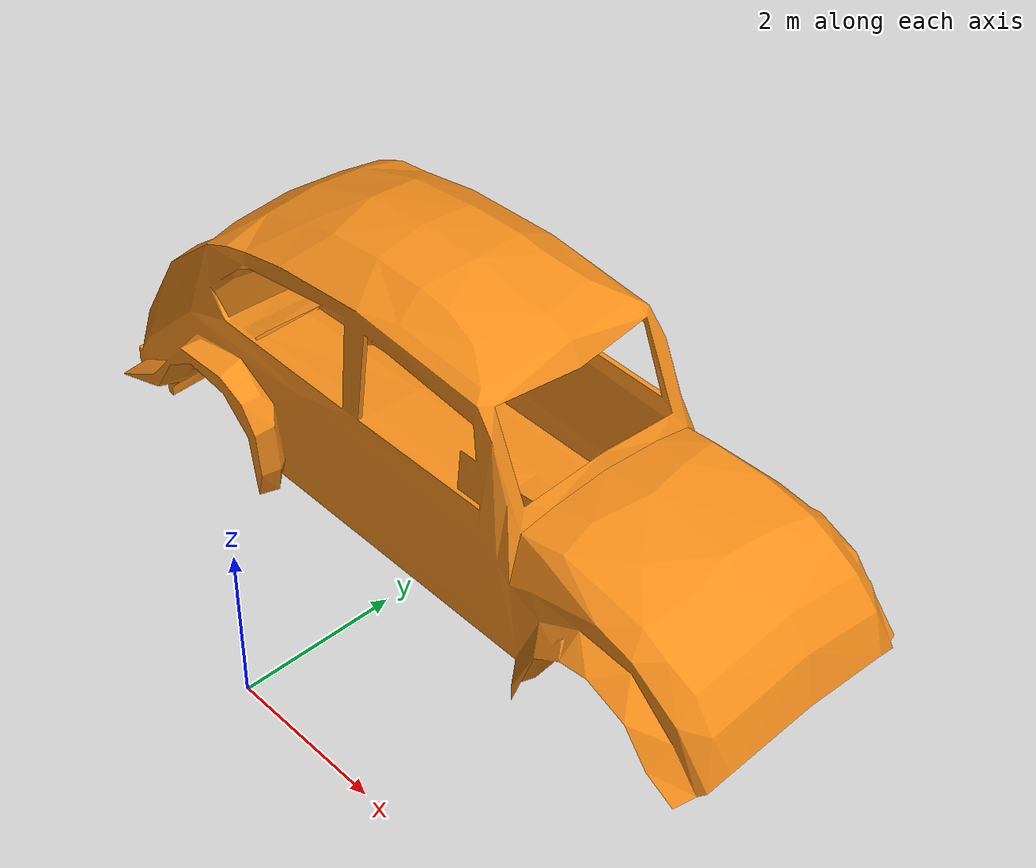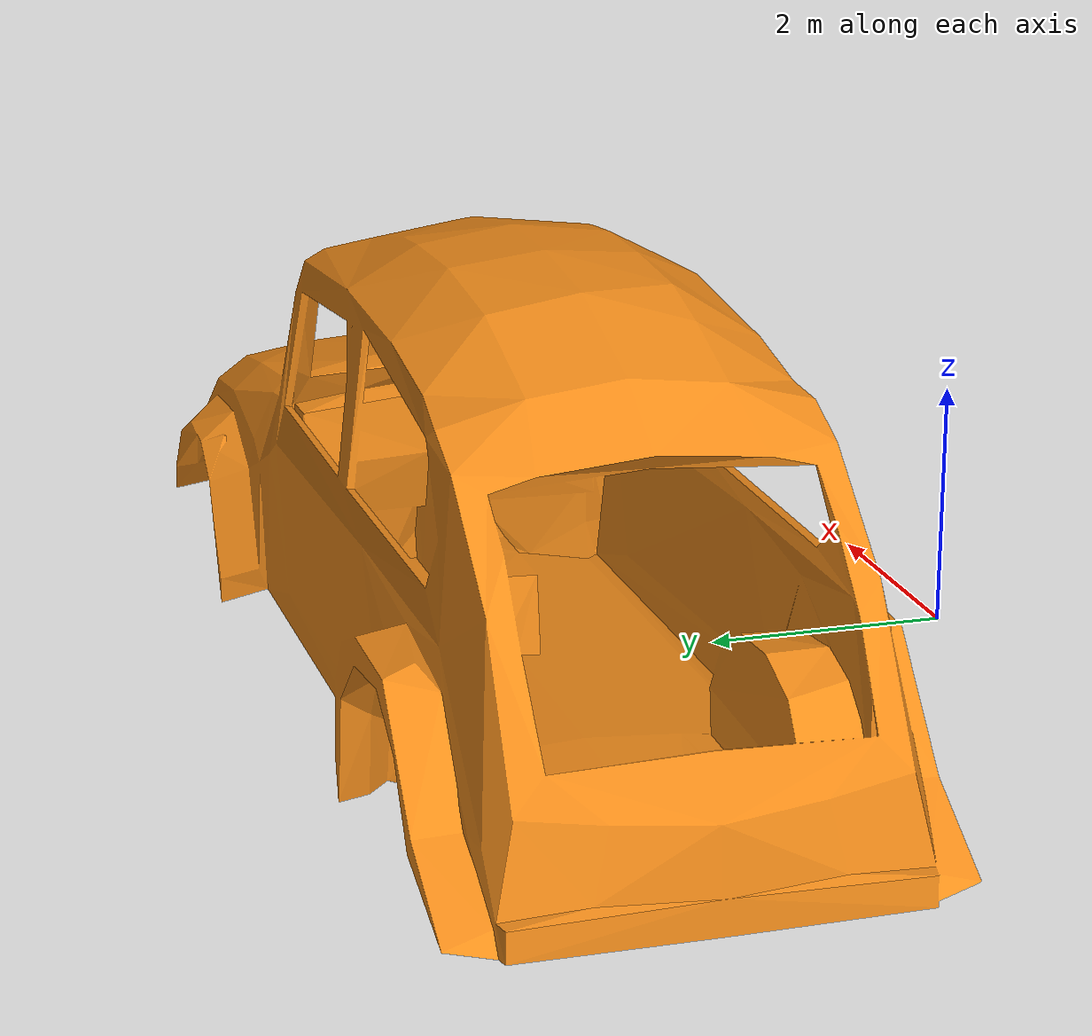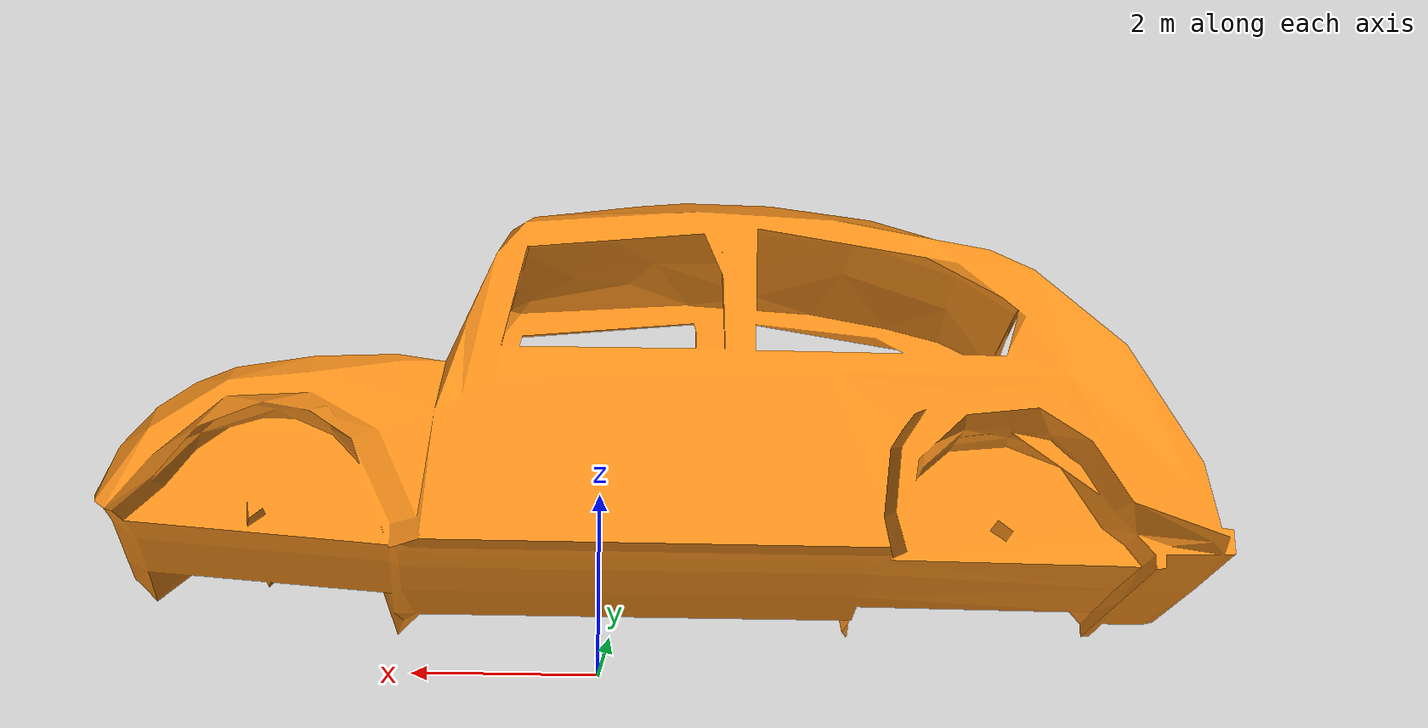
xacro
<?xml version="1.0"?>

<robot name="car" xmlns:xacro="http://ros.org/wiki/xacro">

  <link name="world"></link>

    <link name='car_base'>

      <inertial>
        <mass value="500" />
        <origin rpy="0 0 0" xyz="0 0 0"/>
        <inertia
          ixx="6.71747915" ixy="0.00002148" ixz="-0.00000024"
          iyx="0.00002148" iyy="6.71747915" iyz="-0.17180670"
          izx="-0.00000024" izy="0" izz="6.71747915"/>
      </inertial>

      <visual>
        <origin xyz="0 0 0" rpy="0 0 0" />
        <geometry>
           <mesh filename="package://uav_frontier_exploration_3d/models/car/meshes/car_mesh_1500.dae"
            scale="0.6 0.6 0.6" />
        </geometry>
      </visual>

      <collision name='collision'>
        <origin xyz="0 0 0" rpy="0 0 0"/>
        <geometry>
           <mesh filename="package://uav_frontier_exploration_3d/models/car/meshes/car_mesh_1500.dae"
            scale="0.6 0.6 0.6" />
        </geometry>
      </collision>
    </link>

    <joint name="joint_car_base" type="fixed">
        <origin xyz="0 0 0.01" rpy="0 0 0"/>
        <parent link="world"/>
        <child link="car_base"/>
    </joint>

  <gazebo reference="car_base">
    <material>Gazebo/Orange</material>
  </gazebo>
  <gazebo>
    <static>true</static>
  </gazebo>

</robot>
